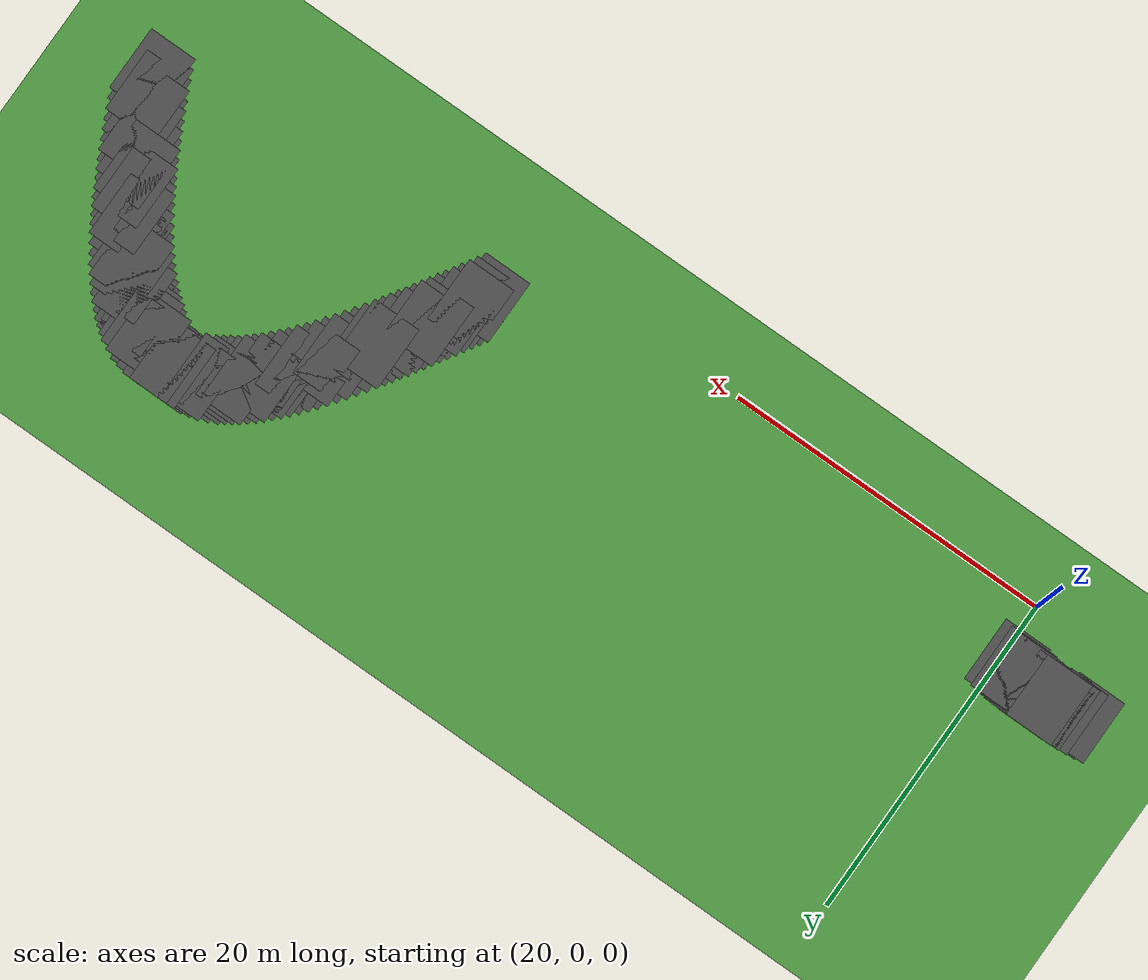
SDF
<sdf version="1.7">
 <world name="default">
  <model name="grass">
   <static>1</static>
   <link name="link">
    <collision name="collision">
     <geometry><plane><normal>0 0 1</normal><size>500 700</size></plane></geometry>
     <surface><friction><ode><mu>100</mu><mu2>50</mu2></ode></friction></surface>
    </collision>
    <visual name="visual">
     <cast_shadows>0</cast_shadows>
     <geometry><plane><normal>0 0 1</normal><size>500 700</size></plane></geometry>
     <material>
      <script><uri>file://media/materials/scripts/gazebo.material</uri><name>Gazebo/Grass</name></script>
     </material>
    </visual>
   </link>
   <pose>200 250 0 0 -0 0</pose>
  </model>
  <model name="roadSegment_14_1">
   <static>1</static>
   <link name="link">
    <collision name="collision"><geometry><box><size>3 4 0.01</size></box></geometry></collision>
    <visual name="visual">
     <cast_shadows>0</cast_shadows>
     <geometry><box><size>3 4 0.01</size></box></geometry>
     <material>
      <script>
       <uri>model://asphalt_plane/materials/scripts</uri>
       <uri>model://asphalt_plane/materials/textures</uri>
       <name>vrc/asphalt</name>
      </script>
     </material>
    </visual>
   </link>
   <pose>14.5 3.5651 0 0 -0 0</pose>
  </model>
  <model name="roadSegment_15_0">
   <static>1</static>
   <link name="link">
    <collision name="collision"><geometry><box><size>3 4 0.01</size></box></geometry></collision>
    <visual name="visual">
     <cast_shadows>0</cast_shadows>
     <geometry><box><size>3 4 0.01</size></box></geometry>
     <material>
      <script>
       <uri>model://asphalt_plane/materials/scripts</uri>
       <uri>model://asphalt_plane/materials/textures</uri>
       <name>vrc/asphalt</name>
      </script>
     </material>
    </visual>
   </link>
   <pose>15 3.65131 0 0 -0 0</pose>
  </model>
  <model name="roadSegment_15_1">
   <static>1</static>
   <link name="link">
    <collision name="collision"><geometry><box><size>3 4 0.01</size></box></geometry></collision>
    <visual name="visual">
     <cast_shadows>0</cast_shadows>
     <geometry><box><size>3 4 0.01</size></box></geometry>
     <material>
      <script>
       <uri>model://asphalt_plane/materials/scripts</uri>
       <uri>model://asphalt_plane/materials/textures</uri>
       <name>vrc/asphalt</name>
      </script>
     </material>
    </visual>
   </link>
   <pose>15.5 3.70442 0 0 -0 0</pose>
  </model>
  <model name="roadSegment_16_0">
   <static>1</static>
   <link name="link">
    <collision name="collision"><geometry><box><size>3 4 0.01</size></box></geometry></collision>
    <visual name="visual">
     <cast_shadows>0</cast_shadows>
     <geometry><box><size>3 4 0.01</size></box></geometry>
     <material>
      <script>
       <uri>model://asphalt_plane/materials/scripts</uri>
       <uri>model://asphalt_plane/materials/textures</uri>
       <name>vrc/asphalt</name>
      </script>
     </material>
    </visual>
   </link>
   <pose>16 3.75753 0 0 -0 0</pose>
  </model>
  <model name="roadSegment_16_1">
   <static>1</static>
   <link name="link">
    <collision name="collision"><geometry><box><size>3 4 0.01</size></box></geometry></collision>
    <visual name="visual">
     <cast_shadows>0</cast_shadows>
     <geometry><box><size>3 4 0.01</size></box></geometry>
     <material>
      <script>
       <uri>model://asphalt_plane/materials/scripts</uri>
       <uri>model://asphalt_plane/materials/textures</uri>
       <name>vrc/asphalt</name>
      </script>
     </material>
    </visual>
   </link>
   <pose>16.5 3.77333 0 0 -0 0</pose>
  </model>
  <model name="roadSegment_17_0">
   <static>1</static>
   <link name="link">
    <collision name="collision"><geometry><box><size>3 4 0.01</size></box></geometry></collision>
    <visual name="visual">
     <cast_shadows>0</cast_shadows>
     <geometry><box><size>3 4 0.01</size></box></geometry>
     <material>
      <script>
       <uri>model://asphalt_plane/materials/scripts</uri>
       <uri>model://asphalt_plane/materials/textures</uri>
       <name>vrc/asphalt</name>
      </script>
     </material>
    </visual>
   </link>
   <pose>17 3.78913 0 0 -0 0</pose>
  </model>
  <model name="roadSegment_17_1">
   <static>1</static>
   <link name="link">
    <collision name="collision"><geometry><box><size>3 4 0.01</size></box></geometry></collision>
    <visual name="visual">
     <cast_shadows>0</cast_shadows>
     <geometry><box><size>3 4 0.01</size></box></geometry>
     <material>
      <script>
       <uri>model://asphalt_plane/materials/scripts</uri>
       <uri>model://asphalt_plane/materials/textures</uri>
       <name>vrc/asphalt</name>
      </script>
     </material>
    </visual>
   </link>
   <pose>17.5 3.76409 0 0 -0 0</pose>
  </model>
  <model name="roadSegment_18_0">
   <static>1</static>
   <link name="link">
    <collision name="collision"><geometry><box><size>3 4 0.01</size></box></geometry></collision>
    <visual name="visual">
     <cast_shadows>0</cast_shadows>
     <geometry><box><size>3 4 0.01</size></box></geometry>
     <material>
      <script>
       <uri>model://asphalt_plane/materials/scripts</uri>
       <uri>model://asphalt_plane/materials/textures</uri>
       <name>vrc/asphalt</name>
      </script>
     </material>
    </visual>
   </link>
   <pose>18 3.73906 0 0 -0 0</pose>
  </model>
  <model name="roadSegment_18_1">
   <static>1</static>
   <link name="link">
    <collision name="collision"><geometry><box><size>3 4 0.01</size></box></geometry></collision>
    <visual name="visual">
     <cast_shadows>0</cast_shadows>
     <geometry><box><size>3 4 0.01</size></box></geometry>
     <material>
      <script>
       <uri>model://asphalt_plane/materials/scripts</uri>
       <uri>model://asphalt_plane/materials/textures</uri>
       <name>vrc/asphalt</name>
      </script>
     </material>
    </visual>
   </link>
   <pose>18.5 3.67046 0 0 -0 0</pose>
  </model>
  <model name="roadSegment_19_0">
   <static>1</static>
   <link name="link">
    <collision name="collision"><geometry><box><size>3 4 0.01</size></box></geometry></collision>
    <visual name="visual">
     <cast_shadows>0</cast_shadows>
     <geometry><box><size>3 4 0.01</size></box></geometry>
     <material>
      <script>
       <uri>model://asphalt_plane/materials/scripts</uri>
       <uri>model://asphalt_plane/materials/textures</uri>
       <name>vrc/asphalt</name>
      </script>
     </material>
    </visual>
   </link>
   <pose>19 3.60186 0 0 -0 0</pose>
  </model>
  <model name="roadSegment_19_1">
   <static>1</static>
   <link name="link">
    <collision name="collision"><geometry><box><size>3 4 0.01</size></box></geometry></collision>
    <visual name="visual">
     <cast_shadows>0</cast_shadows>
     <geometry><box><size>3 4 0.01</size></box></geometry>
     <material>
      <script>
       <uri>model://asphalt_plane/materials/scripts</uri>
       <uri>model://asphalt_plane/materials/textures</uri>
       <name>vrc/asphalt</name>
      </script>
     </material>
    </visual>
   </link>
   <pose>19.5 3.48782 0 0 -0 0</pose>
  </model>
  <model name="roadSegment_54_2">
   <static>1</static>
   <link name="link">
    <collision name="collision"><geometry><box><size>3 4 0.01</size></box></geometry></collision>
    <visual name="visual">
     <cast_shadows>0</cast_shadows>
     <geometry><box><size>3 4 0.01</size></box></geometry>
     <material>
      <script>
       <uri>model://asphalt_plane/materials/scripts</uri>
       <uri>model://asphalt_plane/materials/textures</uri>
       <name>vrc/asphalt</name>
      </script>
     </material>
    </visual>
   </link>
   <pose>54.5 3.49619 0 0 -0 0</pose>
  </model>
  <model name="roadSegment_54_3">
   <static>1</static>
   <link name="link">
    <collision name="collision"><geometry><box><size>3 4 0.01</size></box></geometry></collision>
    <visual name="visual">
     <cast_shadows>0</cast_shadows>
     <geometry><box><size>3 4 0.01</size></box></geometry>
     <material>
      <script>
       <uri>model://asphalt_plane/materials/scripts</uri>
       <uri>model://asphalt_plane/materials/textures</uri>
       <name>vrc/asphalt</name>
      </script>
     </material>
    </visual>
   </link>
   <pose>54.75 3.90719 0 0 -0 0</pose>
  </model>
  <model name="roadSegment_55_0">
   <static>1</static>
   <link name="link">
    <collision name="collision"><geometry><box><size>3 4 0.01</size></box></geometry></collision>
    <visual name="visual">
     <cast_shadows>0</cast_shadows>
     <geometry><box><size>3 4 0.01</size></box></geometry>
     <material>
      <script>
       <uri>model://asphalt_plane/materials/scripts</uri>
       <uri>model://asphalt_plane/materials/textures</uri>
       <name>vrc/asphalt</name>
      </script>
     </material>
    </visual>
   </link>
   <pose>55 4.31819 0 0 -0 0</pose>
  </model>
  <model name="roadSegment_55_1">
   <static>1</static>
   <link name="link">
    <collision name="collision"><geometry><box><size>3 4 0.01</size></box></geometry></collision>
    <visual name="visual">
     <cast_shadows>0</cast_shadows>
     <geometry><box><size>3 4 0.01</size></box></geometry>
     <material>
      <script>
       <uri>model://asphalt_plane/materials/scripts</uri>
       <uri>model://asphalt_plane/materials/textures</uri>
       <name>vrc/asphalt</name>
      </script>
     </material>
    </visual>
   </link>
   <pose>55.25 4.72786 0 0 -0 0</pose>
  </model>
  <model name="roadSegment_55_2">
   <static>1</static>
   <link name="link">
    <collision name="collision"><geometry><box><size>3 4 0.01</size></box></geometry></collision>
    <visual name="visual">
     <cast_shadows>0</cast_shadows>
     <geometry><box><size>3 4 0.01</size></box></geometry>
     <material>
      <script>
       <uri>model://asphalt_plane/materials/scripts</uri>
       <uri>model://asphalt_plane/materials/textures</uri>
       <name>vrc/asphalt</name>
      </script>
     </material>
    </visual>
   </link>
   <pose>55.5 5.13753 0 0 -0 0</pose>
  </model>
  <model name="roadSegment_55_3">
   <static>1</static>
   <link name="link">
    <collision name="collision"><geometry><box><size>3 4 0.01</size></box></geometry></collision>
    <visual name="visual">
     <cast_shadows>0</cast_shadows>
     <geometry><box><size>3 4 0.01</size></box></geometry>
     <material>
      <script>
       <uri>model://asphalt_plane/materials/scripts</uri>
       <uri>model://asphalt_plane/materials/textures</uri>
       <name>vrc/asphalt</name>
      </script>
     </material>
    </visual>
   </link>
   <pose>55.75 5.5472 0 0 -0 0</pose>
  </model>
  <model name="roadSegment_56_0">
   <static>1</static>
   <link name="link">
    <collision name="collision"><geometry><box><size>3 4 0.01</size></box></geometry></collision>
    <visual name="visual">
     <cast_shadows>0</cast_shadows>
     <geometry><box><size>3 4 0.01</size></box></geometry>
     <material>
      <script>
       <uri>model://asphalt_plane/materials/scripts</uri>
       <uri>model://asphalt_plane/materials/textures</uri>
       <name>vrc/asphalt</name>
      </script>
     </material>
    </visual>
   </link>
   <pose>56 5.95687 0 0 -0 0</pose>
  </model>
  <model name="roadSegment_56_1">
   <static>1</static>
   <link name="link">
    <collision name="collision"><geometry><box><size>3 4 0.01</size></box></geometry></collision>
    <visual name="visual">
     <cast_shadows>0</cast_shadows>
     <geometry><box><size>3 4 0.01</size></box></geometry>
     <material>
      <script>
       <uri>model://asphalt_plane/materials/scripts</uri>
       <uri>model://asphalt_plane/materials/textures</uri>
       <name>vrc/asphalt</name>
      </script>
     </material>
    </visual>
   </link>
   <pose>56.25 6.35865 0 0 -0 0</pose>
  </model>
  <model name="roadSegment_56_2">
   <static>1</static>
   <link name="link">
    <collision name="collision"><geometry><box><size>3 4 0.01</size></box></geometry></collision>
    <visual name="visual">
     <cast_shadows>0</cast_shadows>
     <geometry><box><size>3 4 0.01</size></box></geometry>
     <material>
      <script>
       <uri>model://asphalt_plane/materials/scripts</uri>
       <uri>model://asphalt_plane/materials/textures</uri>
       <name>vrc/asphalt</name>
      </script>
     </material>
    </visual>
   </link>
   <pose>56.5 6.76043 0 0 -0 0</pose>
  </model>
  <model name="roadSegment_56_3">
   <static>1</static>
   <link name="link">
    <collision name="collision"><geometry><box><size>3 4 0.01</size></box></geometry></collision>
    <visual name="visual">
     <cast_shadows>0</cast_shadows>
     <geometry><box><size>3 4 0.01</size></box></geometry>
     <material>
      <script>
       <uri>model://asphalt_plane/materials/scripts</uri>
       <uri>model://asphalt_plane/materials/textures</uri>
       <name>vrc/asphalt</name>
      </script>
     </material>
    </visual>
   </link>
   <pose>56.75 7.16221 0 0 -0 0</pose>
  </model>
  <model name="roadSegment_57_0">
   <static>1</static>
   <link name="link">
    <collision name="collision"><geometry><box><size>3 4 0.01</size></box></geometry></collision>
    <visual name="visual">
     <cast_shadows>0</cast_shadows>
     <geometry><box><size>3 4 0.01</size></box></geometry>
     <material>
      <script>
       <uri>model://asphalt_plane/materials/scripts</uri>
       <uri>model://asphalt_plane/materials/textures</uri>
       <name>vrc/asphalt</name>
      </script>
     </material>
    </visual>
   </link>
   <pose>57 7.56399 0 0 -0 0</pose>
  </model>
  <model name="roadSegment_57_1">
   <static>1</static>
   <link name="link">
    <collision name="collision"><geometry><box><size>3 4 0.01</size></box></geometry></collision>
    <visual name="visual">
     <cast_shadows>0</cast_shadows>
     <geometry><box><size>3 4 0.01</size></box></geometry>
     <material>
      <script>
       <uri>model://asphalt_plane/materials/scripts</uri>
       <uri>model://asphalt_plane/materials/textures</uri>
       <name>vrc/asphalt</name>
      </script>
     </material>
    </visual>
   </link>
   <pose>57.25 7.95124 0 0 -0 0</pose>
  </model>
  <model name="roadSegment_57_2">
   <static>1</static>
   <link name="link">
    <collision name="collision"><geometry><box><size>3 4 0.01</size></box></geometry></collision>
    <visual name="visual">
     <cast_shadows>0</cast_shadows>
     <geometry><box><size>3 4 0.01</size></box></geometry>
     <material>
      <script>
       <uri>model://asphalt_plane/materials/scripts</uri>
       <uri>model://asphalt_plane/materials/textures</uri>
       <name>vrc/asphalt</name>
      </script>
     </material>
    </visual>
   </link>
   <pose>57.5 8.33849 0 0 -0 0</pose>
  </model>
  <model name="roadSegment_57_3">
   <static>1</static>
   <link name="link">
    <collision name="collision"><geometry><box><size>3 4 0.01</size></box></geometry></collision>
    <visual name="visual">
     <cast_shadows>0</cast_shadows>
     <geometry><box><size>3 4 0.01</size></box></geometry>
     <material>
      <script>
       <uri>model://asphalt_plane/materials/scripts</uri>
       <uri>model://asphalt_plane/materials/textures</uri>
       <name>vrc/asphalt</name>
      </script>
     </material>
    </visual>
   </link>
   <pose>57.75 8.72574 0 0 -0 0</pose>
  </model>
  <model name="roadSegment_58_0">
   <static>1</static>
   <link name="link">
    <collision name="collision"><geometry><box><size>3 4 0.01</size></box></geometry></collision>
    <visual name="visual">
     <cast_shadows>0</cast_shadows>
     <geometry><box><size>3 4 0.01</size></box></geometry>
     <material>
      <script>
       <uri>model://asphalt_plane/materials/scripts</uri>
       <uri>model://asphalt_plane/materials/textures</uri>
       <name>vrc/asphalt</name>
      </script>
     </material>
    </visual>
   </link>
   <pose>58 9.11299 0 0 -0 0</pose>
  </model>
  <model name="roadSegment_58_1">
   <static>1</static>
   <link name="link">
    <collision name="collision"><geometry><box><size>3 4 0.01</size></box></geometry></collision>
    <visual name="visual">
     <cast_shadows>0</cast_shadows>
     <geometry><box><size>3 4 0.01</size></box></geometry>
     <material>
      <script>
       <uri>model://asphalt_plane/materials/scripts</uri>
       <uri>model://asphalt_plane/materials/textures</uri>
       <name>vrc/asphalt</name>
      </script>
     </material>
    </visual>
   </link>
   <pose>58.3333 9.60112 0 0 -0 0</pose>
  </model>
  <model name="roadSegment_58_2">
   <static>1</static>
   <link name="link">
    <collision name="collision"><geometry><box><size>3 4 0.01</size></box></geometry></collision>
    <visual name="visual">
     <cast_shadows>0</cast_shadows>
     <geometry><box><size>3 4 0.01</size></box></geometry>
     <material>
      <script>
       <uri>model://asphalt_plane/materials/scripts</uri>
       <uri>model://asphalt_plane/materials/textures</uri>
       <name>vrc/asphalt</name>
      </script>
     </material>
    </visual>
   </link>
   <pose>58.6667 10.0893 0 0 -0 0</pose>
  </model>
  <model name="roadSegment_59_0">
   <static>1</static>
   <link name="link">
    <collision name="collision"><geometry><box><size>3 4 0.01</size></box></geometry></collision>
    <visual name="visual">
     <cast_shadows>0</cast_shadows>
     <geometry><box><size>3 4 0.01</size></box></geometry>
     <material>
      <script>
       <uri>model://asphalt_plane/materials/scripts</uri>
       <uri>model://asphalt_plane/materials/textures</uri>
       <name>vrc/asphalt</name>
      </script>
     </material>
    </visual>
   </link>
   <pose>59 10.5774 0 0 -0 0</pose>
  </model>
  <model name="roadSegment_59_1">
   <static>1</static>
   <link name="link">
    <collision name="collision"><geometry><box><size>3 4 0.01</size></box></geometry></collision>
    <visual name="visual">
     <cast_shadows>0</cast_shadows>
     <geometry><box><size>3 4 0.01</size></box></geometry>
     <material>
      <script>
       <uri>model://asphalt_plane/materials/scripts</uri>
       <uri>model://asphalt_plane/materials/textures</uri>
       <name>vrc/asphalt</name>
      </script>
     </material>
    </visual>
   </link>
   <pose>59.3333 11.0287 0 0 -0 0</pose>
  </model>
  <model name="roadSegment_59_2">
   <static>1</static>
   <link name="link">
    <collision name="collision"><geometry><box><size>3 4 0.01</size></box></geometry></collision>
    <visual name="visual">
     <cast_shadows>0</cast_shadows>
     <geometry><box><size>3 4 0.01</size></box></geometry>
     <material>
      <script>
       <uri>model://asphalt_plane/materials/scripts</uri>
       <uri>model://asphalt_plane/materials/textures</uri>
       <name>vrc/asphalt</name>
      </script>
     </material>
    </visual>
   </link>
   <pose>59.6667 11.48 0 0 -0 0</pose>
  </model>
  <model name="roadSegment_60_0">
   <static>1</static>
   <link name="link">
    <collision name="collision"><geometry><box><size>3 4 0.01</size></box></geometry></collision>
    <visual name="visual">
     <cast_shadows>0</cast_shadows>
     <geometry><box><size>3 4 0.01</size></box></geometry>
     <material>
      <script>
       <uri>model://asphalt_plane/materials/scripts</uri>
       <uri>model://asphalt_plane/materials/textures</uri>
       <name>vrc/asphalt</name>
      </script>
     </material>
    </visual>
   </link>
   <pose>60 11.9313 0 0 -0 0</pose>
  </model>
  <model name="roadSegment_60_1">
   <static>1</static>
   <link name="link">
    <collision name="collision"><geometry><box><size>3 4 0.01</size></box></geometry></collision>
    <visual name="visual">
     <cast_shadows>0</cast_shadows>
     <geometry><box><size>3 4 0.01</size></box></geometry>
     <material>
      <script>
       <uri>model://asphalt_plane/materials/scripts</uri>
       <uri>model://asphalt_plane/materials/textures</uri>
       <name>vrc/asphalt</name>
      </script>
     </material>
    </visual>
   </link>
   <pose>60.3333 12.3374 0 0 -0 0</pose>
  </model>
  <model name="roadSegment_60_2">
   <static>1</static>
   <link name="link">
    <collision name="collision"><geometry><box><size>3 4 0.01</size></box></geometry></collision>
    <visual name="visual">
     <cast_shadows>0</cast_shadows>
     <geometry><box><size>3 4 0.01</size></box></geometry>
     <material>
      <script>
       <uri>model://asphalt_plane/materials/scripts</uri>
       <uri>model://asphalt_plane/materials/textures</uri>
       <name>vrc/asphalt</name>
      </script>
     </material>
    </visual>
   </link>
   <pose>60.6667 12.7435 0 0 -0 0</pose>
  </model>
  <model name="roadSegment_61_0">
   <static>1</static>
   <link name="link">
    <collision name="collision"><geometry><box><size>3 4 0.01</size></box></geometry></collision>
    <visual name="visual">
     <cast_shadows>0</cast_shadows>
     <geometry><box><size>3 4 0.01</size></box></geometry>
     <material>
      <script>
       <uri>model://asphalt_plane/materials/scripts</uri>
       <uri>model://asphalt_plane/materials/textures</uri>
       <name>vrc/asphalt</name>
      </script>
     </material>
    </visual>
   </link>
   <pose>61 13.1497 0 0 -0 0</pose>
  </model>
  <model name="roadSegment_61_1">
   <static>1</static>
   <link name="link">
    <collision name="collision"><geometry><box><size>3 4 0.01</size></box></geometry></collision>
    <visual name="visual">
     <cast_shadows>0</cast_shadows>
     <geometry><box><size>3 4 0.01</size></box></geometry>
     <material>
      <script>
       <uri>model://asphalt_plane/materials/scripts</uri>
       <uri>model://asphalt_plane/materials/textures</uri>
       <name>vrc/asphalt</name>
      </script>
     </material>
    </visual>
   </link>
   <pose>61.3333 13.5028 0 0 -0 0</pose>
  </model>
  <model name="roadSegment_61_2">
   <static>1</static>
   <link name="link">
    <collision name="collision"><geometry><box><size>3 4 0.01</size></box></geometry></collision>
    <visual name="visual">
     <cast_shadows>0</cast_shadows>
     <geometry><box><size>3 4 0.01</size></box></geometry>
     <material>
      <script>
       <uri>model://asphalt_plane/materials/scripts</uri>
       <uri>model://asphalt_plane/materials/textures</uri>
       <name>vrc/asphalt</name>
      </script>
     </material>
    </visual>
   </link>
   <pose>61.6667 13.856 0 0 -0 0</pose>
  </model>
  <model name="roadSegment_62_0">
   <static>1</static>
   <link name="link">
    <collision name="collision"><geometry><box><size>3 4 0.01</size></box></geometry></collision>
    <visual name="visual">
     <cast_shadows>0</cast_shadows>
     <geometry><box><size>3 4 0.01</size></box></geometry>
     <material>
      <script>
       <uri>model://asphalt_plane/materials/scripts</uri>
       <uri>model://asphalt_plane/materials/textures</uri>
       <name>vrc/asphalt</name>
      </script>
     </material>
    </visual>
   </link>
   <pose>62 14.2092 0 0 -0 0</pose>
  </model>
  <model name="roadSegment_62_1">
   <static>1</static>
   <link name="link">
    <collision name="collision"><geometry><box><size>3 4 0.01</size></box></geometry></collision>
    <visual name="visual">
     <cast_shadows>0</cast_shadows>
     <geometry><box><size>3 4 0.01</size></box></geometry>
     <material>
      <script>
       <uri>model://asphalt_plane/materials/scripts</uri>
       <uri>model://asphalt_plane/materials/textures</uri>
       <name>vrc/asphalt</name>
      </script>
     </material>
    </visual>
   </link>
   <pose>62.3333 14.5021 0 0 -0 0</pose>
  </model>
  <model name="roadSegment_62_2">
   <static>1</static>
   <link name="link">
    <collision name="collision"><geometry><box><size>3 4 0.01</size></box></geometry></collision>
    <visual name="visual">
     <cast_shadows>0</cast_shadows>
     <geometry><box><size>3 4 0.01</size></box></geometry>
     <material>
      <script>
       <uri>model://asphalt_plane/materials/scripts</uri>
       <uri>model://asphalt_plane/materials/textures</uri>
       <name>vrc/asphalt</name>
      </script>
     </material>
    </visual>
   </link>
   <pose>62.6667 14.7951 0 0 -0 0</pose>
  </model>
  <model name="roadSegment_63_0">
   <static>1</static>
   <link name="link">
    <collision name="collision"><geometry><box><size>3 4 0.01</size></box></geometry></collision>
    <visual name="visual">
     <cast_shadows>0</cast_shadows>
     <geometry><box><size>3 4 0.01</size></box></geometry>
     <material>
      <script>
       <uri>model://asphalt_plane/materials/scripts</uri>
       <uri>model://asphalt_plane/materials/textures</uri>
       <name>vrc/asphalt</name>
      </script>
     </material>
    </visual>
   </link>
   <pose>63 15.088 0 0 -0 0</pose>
  </model>
  <model name="roadSegment_63_1">
   <static>1</static>
   <link name="link">
    <collision name="collision"><geometry><box><size>3 4 0.01</size></box></geometry></collision>
    <visual name="visual">
     <cast_shadows>0</cast_shadows>
     <geometry><box><size>3 4 0.01</size></box></geometry>
     <material>
      <script>
       <uri>model://asphalt_plane/materials/scripts</uri>
       <uri>model://asphalt_plane/materials/textures</uri>
       <name>vrc/asphalt</name>
      </script>
     </material>
    </visual>
   </link>
   <pose>63.3333 15.3143 0 0 -0 0</pose>
  </model>
  <model name="roadSegment_63_2">
   <static>1</static>
   <link name="link">
    <collision name="collision"><geometry><box><size>3 4 0.01</size></box></geometry></collision>
    <visual name="visual">
     <cast_shadows>0</cast_shadows>
     <geometry><box><size>3 4 0.01</size></box></geometry>
     <material>
      <script>
       <uri>model://asphalt_plane/materials/scripts</uri>
       <uri>model://asphalt_plane/materials/textures</uri>
       <name>vrc/asphalt</name>
      </script>
     </material>
    </visual>
   </link>
   <pose>63.6667 15.5406 0 0 -0 0</pose>
  </model>
  <model name="roadSegment_64_0">
   <static>1</static>
   <link name="link">
    <collision name="collision"><geometry><box><size>3 4 0.01</size></box></geometry></collision>
    <visual name="visual">
     <cast_shadows>0</cast_shadows>
     <geometry><box><size>3 4 0.01</size></box></geometry>
     <material>
      <script>
       <uri>model://asphalt_plane/materials/scripts</uri>
       <uri>model://asphalt_plane/materials/textures</uri>
       <name>vrc/asphalt</name>
      </script>
     </material>
    </visual>
   </link>
   <pose>64 15.7669 0 0 -0 0</pose>
  </model>
  <model name="roadSegment_64_1">
   <static>1</static>
   <link name="link">
    <collision name="collision"><geometry><box><size>3 4 0.01</size></box></geometry></collision>
    <visual name="visual">
     <cast_shadows>0</cast_shadows>
     <geometry><box><size>3 4 0.01</size></box></geometry>
     <material>
      <script>
       <uri>model://asphalt_plane/materials/scripts</uri>
       <uri>model://asphalt_plane/materials/textures</uri>
       <name>vrc/asphalt</name>
      </script>
     </material>
    </visual>
   </link>
   <pose>64.5 15.9979 0 0 -0 0</pose>
  </model>
  <model name="roadSegment_65_0">
   <static>1</static>
   <link name="link">
    <collision name="collision"><geometry><box><size>3 4 0.01</size></box></geometry></collision>
    <visual name="visual">
     <cast_shadows>0</cast_shadows>
     <geometry><box><size>3 4 0.01</size></box></geometry>
     <material>
      <script>
       <uri>model://asphalt_plane/materials/scripts</uri>
       <uri>model://asphalt_plane/materials/textures</uri>
       <name>vrc/asphalt</name>
      </script>
     </material>
    </visual>
   </link>
   <pose>65 16.229 0 0 -0 0</pose>
  </model>
  <model name="roadSegment_65_1">
   <static>1</static>
   <link name="link">
    <collision name="collision"><geometry><box><size>3 4 0.01</size></box></geometry></collision>
    <visual name="visual">
     <cast_shadows>0</cast_shadows>
     <geometry><box><size>3 4 0.01</size></box></geometry>
     <material>
      <script>
       <uri>model://asphalt_plane/materials/scripts</uri>
       <uri>model://asphalt_plane/materials/textures</uri>
       <name>vrc/asphalt</name>
      </script>
     </material>
    </visual>
   </link>
   <pose>65.5 16.3448 0 0 -0 0</pose>
  </model>
  <model name="roadSegment_66_0">
   <static>1</static>
   <link name="link">
    <collision name="collision"><geometry><box><size>3 4 0.01</size></box></geometry></collision>
    <visual name="visual">
     <cast_shadows>0</cast_shadows>
     <geometry><box><size>3 4 0.01</size></box></geometry>
     <material>
      <script>
       <uri>model://asphalt_plane/materials/scripts</uri>
       <uri>model://asphalt_plane/materials/textures</uri>
       <name>vrc/asphalt</name>
      </script>
     </material>
    </visual>
   </link>
   <pose>66 16.4605 0 0 -0 0</pose>
  </model>
  <model name="roadSegment_66_1">
   <static>1</static>
   <link name="link">
    <collision name="collision"><geometry><box><size>3 4 0.01</size></box></geometry></collision>
    <visual name="visual">
     <cast_shadows>0</cast_shadows>
     <geometry><box><size>3 4 0.01</size></box></geometry>
     <material>
      <script>
       <uri>model://asphalt_plane/materials/scripts</uri>
       <uri>model://asphalt_plane/materials/textures</uri>
       <name>vrc/asphalt</name>
      </script>
     </material>
    </visual>
   </link>
   <pose>66.5 16.4558 0 0 -0 0</pose>
  </model>
  <model name="roadSegment_67_0">
   <static>1</static>
   <link name="link">
    <collision name="collision"><geometry><box><size>3 4 0.01</size></box></geometry></collision>
    <visual name="visual">
     <cast_shadows>0</cast_shadows>
     <geometry><box><size>3 4 0.01</size></box></geometry>
     <material>
      <script>
       <uri>model://asphalt_plane/materials/scripts</uri>
       <uri>model://asphalt_plane/materials/textures</uri>
       <name>vrc/asphalt</name>
      </script>
     </material>
    </visual>
   </link>
   <pose>67 16.451 0 0 -0 0</pose>
  </model>
  <model name="roadSegment_67_1">
   <static>1</static>
   <link name="link">
    <collision name="collision"><geometry><box><size>3 4 0.01</size></box></geometry></collision>
    <visual name="visual">
     <cast_shadows>0</cast_shadows>
     <geometry><box><size>3 4 0.01</size></box></geometry>
     <material>
      <script>
       <uri>model://asphalt_plane/materials/scripts</uri>
       <uri>model://asphalt_plane/materials/textures</uri>
       <name>vrc/asphalt</name>
      </script>
     </material>
    </visual>
   </link>
   <pose>67.5 16.3222 0 0 -0 0</pose>
  </model>
  <model name="roadSegment_68_0">
   <static>1</static>
   <link name="link">
    <collision name="collision"><geometry><box><size>3 4 0.01</size></box></geometry></collision>
    <visual name="visual">
     <cast_shadows>0</cast_shadows>
     <geometry><box><size>3 4 0.01</size></box></geometry>
     <material>
      <script>
       <uri>model://asphalt_plane/materials/scripts</uri>
       <uri>model://asphalt_plane/materials/textures</uri>
       <name>vrc/asphalt</name>
      </script>
     </material>
    </visual>
   </link>
   <pose>68 16.1934 0 0 -0 0</pose>
  </model>
  <model name="roadSegment_68_1">
   <static>1</static>
   <link name="link">
    <collision name="collision"><geometry><box><size>3 4 0.01</size></box></geometry></collision>
    <visual name="visual">
     <cast_shadows>0</cast_shadows>
     <geometry><box><size>3 4 0.01</size></box></geometry>
     <material>
      <script>
       <uri>model://asphalt_plane/materials/scripts</uri>
       <uri>model://asphalt_plane/materials/textures</uri>
       <name>vrc/asphalt</name>
      </script>
     </material>
    </visual>
   </link>
   <pose>68.5 15.9389 0 0 -0 0</pose>
  </model>
  <model name="roadSegment_69_0">
   <static>1</static>
   <link name="link">
    <collision name="collision"><geometry><box><size>3 4 0.01</size></box></geometry></collision>
    <visual name="visual">
     <cast_shadows>0</cast_shadows>
     <geometry><box><size>3 4 0.01</size></box></geometry>
     <material>
      <script>
       <uri>model://asphalt_plane/materials/scripts</uri>
       <uri>model://asphalt_plane/materials/textures</uri>
       <name>vrc/asphalt</name>
      </script>
     </material>
    </visual>
   </link>
   <pose>69 15.6845 0 0 -0 0</pose>
  </model>
  <model name="roadSegment_69_1">
   <static>1</static>
   <link name="link">
    <collision name="collision"><geometry><box><size>3 4 0.01</size></box></geometry></collision>
    <visual name="visual">
     <cast_shadows>0</cast_shadows>
     <geometry><box><size>3 4 0.01</size></box></geometry>
     <material>
      <script>
       <uri>model://asphalt_plane/materials/scripts</uri>
       <uri>model://asphalt_plane/materials/textures</uri>
       <name>vrc/asphalt</name>
      </script>
     </material>
    </visual>
   </link>
   <pose>69.3333 15.4313 0 0 -0 0</pose>
  </model>
  <model name="roadSegment_69_2">
   <static>1</static>
   <link name="link">
    <collision name="collision"><geometry><box><size>3 4 0.01</size></box></geometry></collision>
    <visual name="visual">
     <cast_shadows>0</cast_shadows>
     <geometry><box><size>3 4 0.01</size></box></geometry>
     <material>
      <script>
       <uri>model://asphalt_plane/materials/scripts</uri>
       <uri>model://asphalt_plane/materials/textures</uri>
       <name>vrc/asphalt</name>
      </script>
     </material>
    </visual>
   </link>
   <pose>69.6667 15.1781 0 0 -0 0</pose>
  </model>
  <model name="roadSegment_70_0">
   <static>1</static>
   <link name="link">
    <collision name="collision"><geometry><box><size>3 4 0.01</size></box></geometry></collision>
    <visual name="visual">
     <cast_shadows>0</cast_shadows>
     <geometry><box><size>3 4 0.01</size></box></geometry>
     <material>
      <script>
       <uri>model://asphalt_plane/materials/scripts</uri>
       <uri>model://asphalt_plane/materials/textures</uri>
       <name>vrc/asphalt</name>
      </script>
     </material>
    </visual>
   </link>
   <pose>70 14.9249 0 0 -0 0</pose>
  </model>
  <model name="roadSegment_70_1">
   <static>1</static>
   <link name="link">
    <collision name="collision"><geometry><box><size>3 4 0.01</size></box></geometry></collision>
    <visual name="visual">
     <cast_shadows>0</cast_shadows>
     <geometry><box><size>3 4 0.01</size></box></geometry>
     <material>
      <script>
       <uri>model://asphalt_plane/materials/scripts</uri>
       <uri>model://asphalt_plane/materials/textures</uri>
       <name>vrc/asphalt</name>
      </script>
     </material>
    </visual>
   </link>
   <pose>70.3333 14.5896 0 0 -0 0</pose>
  </model>
  <model name="roadSegment_70_2">
   <static>1</static>
   <link name="link">
    <collision name="collision"><geometry><box><size>3 4 0.01</size></box></geometry></collision>
    <visual name="visual">
     <cast_shadows>0</cast_shadows>
     <geometry><box><size>3 4 0.01</size></box></geometry>
     <material>
      <script>
       <uri>model://asphalt_plane/materials/scripts</uri>
       <uri>model://asphalt_plane/materials/textures</uri>
       <name>vrc/asphalt</name>
      </script>
     </material>
    </visual>
   </link>
   <pose>70.6667 14.2544 0 0 -0 0</pose>
  </model>
  <model name="roadSegment_71_0">
   <static>1</static>
   <link name="link">
    <collision name="collision"><geometry><box><size>3 4 0.01</size></box></geometry></collision>
    <visual name="visual">
     <cast_shadows>0</cast_shadows>
     <geometry><box><size>3 4 0.01</size></box></geometry>
     <material>
      <script>
       <uri>model://asphalt_plane/materials/scripts</uri>
       <uri>model://asphalt_plane/materials/textures</uri>
       <name>vrc/asphalt</name>
      </script>
     </material>
    </visual>
   </link>
   <pose>71 13.9191 0 0 -0 0</pose>
  </model>
  <model name="roadSegment_71_1">
   <static>1</static>
   <link name="link">
    <collision name="collision"><geometry><box><size>3 4 0.01</size></box></geometry></collision>
    <visual name="visual">
     <cast_shadows>0</cast_shadows>
     <geometry><box><size>3 4 0.01</size></box></geometry>
     <material>
      <script>
       <uri>model://asphalt_plane/materials/scripts</uri>
       <uri>model://asphalt_plane/materials/textures</uri>
       <name>vrc/asphalt</name>
      </script>
     </material>
    </visual>
   </link>
   <pose>71.3333 13.5047 0 0 -0 0</pose>
  </model>
  <model name="roadSegment_71_2">
   <static>1</static>
   <link name="link">
    <collision name="collision"><geometry><box><size>3 4 0.01</size></box></geometry></collision>
    <visual name="visual">
     <cast_shadows>0</cast_shadows>
     <geometry><box><size>3 4 0.01</size></box></geometry>
     <material>
      <script>
       <uri>model://asphalt_plane/materials/scripts</uri>
       <uri>model://asphalt_plane/materials/textures</uri>
       <name>vrc/asphalt</name>
      </script>
     </material>
    </visual>
   </link>
   <pose>71.6667 13.0903 0 0 -0 0</pose>
  </model>
  <model name="roadSegment_72_0">
   <static>1</static>
   <link name="link">
    <collision name="collision"><geometry><box><size>3 4 0.01</size></box></geometry></collision>
    <visual name="visual">
     <cast_shadows>0</cast_shadows>
     <geometry><box><size>3 4 0.01</size></box></geometry>
     <material>
      <script>
       <uri>model://asphalt_plane/materials/scripts</uri>
       <uri>model://asphalt_plane/materials/textures</uri>
       <name>vrc/asphalt</name>
      </script>
     </material>
    </visual>
   </link>
   <pose>72 12.6759 0 0 -0 0</pose>
  </model>
  <model name="roadSegment_72_1">
   <static>1</static>
   <link name="link">
    <collision name="collision"><geometry><box><size>3 4 0.01</size></box></geometry></collision>
    <visual name="visual">
     <cast_shadows>0</cast_shadows>
     <geometry><box><size>3 4 0.01</size></box></geometry>
     <material>
      <script>
       <uri>model://asphalt_plane/materials/scripts</uri>
       <uri>model://asphalt_plane/materials/textures</uri>
       <name>vrc/asphalt</name>
      </script>
     </material>
    </visual>
   </link>
   <pose>72.3333 12.1865 0 0 -0 0</pose>
  </model>
  <model name="roadSegment_72_2">
   <static>1</static>
   <link name="link">
    <collision name="collision"><geometry><box><size>3 4 0.01</size></box></geometry></collision>
    <visual name="visual">
     <cast_shadows>0</cast_shadows>
     <geometry><box><size>3 4 0.01</size></box></geometry>
     <material>
      <script>
       <uri>model://asphalt_plane/materials/scripts</uri>
       <uri>model://asphalt_plane/materials/textures</uri>
       <name>vrc/asphalt</name>
      </script>
     </material>
    </visual>
   </link>
   <pose>72.6667 11.6971 0 0 -0 0</pose>
  </model>
  <model name="roadSegment_73_0">
   <static>1</static>
   <link name="link">
    <collision name="collision"><geometry><box><size>3 4 0.01</size></box></geometry></collision>
    <visual name="visual">
     <cast_shadows>0</cast_shadows>
     <geometry><box><size>3 4 0.01</size></box></geometry>
     <material>
      <script>
       <uri>model://asphalt_plane/materials/scripts</uri>
       <uri>model://asphalt_plane/materials/textures</uri>
       <name>vrc/asphalt</name>
      </script>
     </material>
    </visual>
   </link>
   <pose>73 11.2077 0 0 -0 0</pose>
  </model>
  <model name="roadSegment_73_1">
   <static>1</static>
   <link name="link">
    <collision name="collision"><geometry><box><size>3 4 0.01</size></box></geometry></collision>
    <visual name="visual">
     <cast_shadows>0</cast_shadows>
     <geometry><box><size>3 4 0.01</size></box></geometry>
     <material>
      <script>
       <uri>model://asphalt_plane/materials/scripts</uri>
       <uri>model://asphalt_plane/materials/textures</uri>
       <name>vrc/asphalt</name>
      </script>
     </material>
    </visual>
   </link>
   <pose>73.25 10.7885 0 0 -0 0</pose>
  </model>
  <model name="roadSegment_73_2">
   <static>1</static>
   <link name="link">
    <collision name="collision"><geometry><box><size>3 4 0.01</size></box></geometry></collision>
    <visual name="visual">
     <cast_shadows>0</cast_shadows>
     <geometry><box><size>3 4 0.01</size></box></geometry>
     <material>
      <script>
       <uri>model://asphalt_plane/materials/scripts</uri>
       <uri>model://asphalt_plane/materials/textures</uri>
       <name>vrc/asphalt</name>
      </script>
     </material>
    </visual>
   </link>
   <pose>73.5 10.3693 0 0 -0 0</pose>
  </model>
  <model name="roadSegment_73_3">
   <static>1</static>
   <link name="link">
    <collision name="collision"><geometry><box><size>3 4 0.01</size></box></geometry></collision>
    <visual name="visual">
     <cast_shadows>0</cast_shadows>
     <geometry><box><size>3 4 0.01</size></box></geometry>
     <material>
      <script>
       <uri>model://asphalt_plane/materials/scripts</uri>
       <uri>model://asphalt_plane/materials/textures</uri>
       <name>vrc/asphalt</name>
      </script>
     </material>
    </visual>
   </link>
   <pose>73.75 9.95013 0 0 -0 0</pose>
  </model>
  <model name="roadSegment_74_0">
   <static>1</static>
   <link name="link">
    <collision name="collision"><geometry><box><size>3 4 0.01</size></box></geometry></collision>
    <visual name="visual">
     <cast_shadows>0</cast_shadows>
     <geometry><box><size>3 4 0.01</size></box></geometry>
     <material>
      <script>
       <uri>model://asphalt_plane/materials/scripts</uri>
       <uri>model://asphalt_plane/materials/textures</uri>
       <name>vrc/asphalt</name>
      </script>
     </material>
    </visual>
   </link>
   <pose>74 9.53094 0 0 -0 0</pose>
  </model>
  <model name="roadSegment_74_1">
   <static>1</static>
   <link name="link">
    <collision name="collision"><geometry><box><size>3 4 0.01</size></box></geometry></collision>
    <visual name="visual">
     <cast_shadows>0</cast_shadows>
     <geometry><box><size>3 4 0.01</size></box></geometry>
     <material>
      <script>
       <uri>model://asphalt_plane/materials/scripts</uri>
       <uri>model://asphalt_plane/materials/textures</uri>
       <name>vrc/asphalt</name>
      </script>
     </material>
    </visual>
   </link>
   <pose>74.25 9.06462 0 0 -0 0</pose>
  </model>
  <model name="roadSegment_74_2">
   <static>1</static>
   <link name="link">
    <collision name="collision"><geometry><box><size>3 4 0.01</size></box></geometry></collision>
    <visual name="visual">
     <cast_shadows>0</cast_shadows>
     <geometry><box><size>3 4 0.01</size></box></geometry>
     <material>
      <script>
       <uri>model://asphalt_plane/materials/scripts</uri>
       <uri>model://asphalt_plane/materials/textures</uri>
       <name>vrc/asphalt</name>
      </script>
     </material>
    </visual>
   </link>
   <pose>74.5 8.59829 0 0 -0 0</pose>
  </model>
  <model name="roadSegment_74_3">
   <static>1</static>
   <link name="link">
    <collision name="collision"><geometry><box><size>3 4 0.01</size></box></geometry></collision>
    <visual name="visual">
     <cast_shadows>0</cast_shadows>
     <geometry><box><size>3 4 0.01</size></box></geometry>
     <material>
      <script>
       <uri>model://asphalt_plane/materials/scripts</uri>
       <uri>model://asphalt_plane/materials/textures</uri>
       <name>vrc/asphalt</name>
      </script>
     </material>
    </visual>
   </link>
   <pose>74.75 8.13197 0 0 -0 0</pose>
  </model>
  <model name="roadSegment_75_0">
   <static>1</static>
   <link name="link">
    <collision name="collision"><geometry><box><size>3 4 0.01</size></box></geometry></collision>
    <visual name="visual">
     <cast_shadows>0</cast_shadows>
     <geometry><box><size>3 4 0.01</size></box></geometry>
     <material>
      <script>
       <uri>model://asphalt_plane/materials/scripts</uri>
       <uri>model://asphalt_plane/materials/textures</uri>
       <name>vrc/asphalt</name>
      </script>
     </material>
    </visual>
   </link>
   <pose>75 7.66565 0 0 -0 0</pose>
  </model>
  <model name="roadSegment_75_1">
   <static>1</static>
   <link name="link">
    <collision name="collision"><geometry><box><size>3 4 0.01</size></box></geometry></collision>
    <visual name="visual">
     <cast_shadows>0</cast_shadows>
     <geometry><box><size>3 4 0.01</size></box></geometry>
     <material>
      <script>
       <uri>model://asphalt_plane/materials/scripts</uri>
       <uri>model://asphalt_plane/materials/textures</uri>
       <name>vrc/asphalt</name>
      </script>
     </material>
    </visual>
   </link>
   <pose>75.25 7.15808 0 0 -0 0</pose>
  </model>
  <model name="roadSegment_75_2">
   <static>1</static>
   <link name="link">
    <collision name="collision"><geometry><box><size>3 4 0.01</size></box></geometry></collision>
    <visual name="visual">
     <cast_shadows>0</cast_shadows>
     <geometry><box><size>3 4 0.01</size></box></geometry>
     <material>
      <script>
       <uri>model://asphalt_plane/materials/scripts</uri>
       <uri>model://asphalt_plane/materials/textures</uri>
       <name>vrc/asphalt</name>
      </script>
     </material>
    </visual>
   </link>
   <pose>75.5 6.6505 0 0 -0 0</pose>
  </model>
  <model name="roadSegment_75_3">
   <static>1</static>
   <link name="link">
    <collision name="collision"><geometry><box><size>3 4 0.01</size></box></geometry></collision>
    <visual name="visual">
     <cast_shadows>0</cast_shadows>
     <geometry><box><size>3 4 0.01</size></box></geometry>
     <material>
      <script>
       <uri>model://asphalt_plane/materials/scripts</uri>
       <uri>model://asphalt_plane/materials/textures</uri>
       <name>vrc/asphalt</name>
      </script>
     </material>
    </visual>
   </link>
   <pose>75.75 6.14293 0 0 -0 0</pose>
  </model>
  <model name="roadSegment_76_0">
   <static>1</static>
   <link name="link">
    <collision name="collision"><geometry><box><size>3 4 0.01</size></box></geometry></collision>
    <visual name="visual">
     <cast_shadows>0</cast_shadows>
     <geometry><box><size>3 4 0.01</size></box></geometry>
     <material>
      <script>
       <uri>model://asphalt_plane/materials/scripts</uri>
       <uri>model://asphalt_plane/materials/textures</uri>
       <name>vrc/asphalt</name>
      </script>
     </material>
    </visual>
   </link>
   <pose>76 5.63536 0 0 -0 0</pose>
  </model>
  <model name="roadSegment_76_1">
   <static>1</static>
   <link name="link">
    <collision name="collision"><geometry><box><size>3 4 0.01</size></box></geometry></collision>
    <visual name="visual">
     <cast_shadows>0</cast_shadows>
     <geometry><box><size>3 4 0.01</size></box></geometry>
     <material>
      <script>
       <uri>model://asphalt_plane/materials/scripts</uri>
       <uri>model://asphalt_plane/materials/textures</uri>
       <name>vrc/asphalt</name>
      </script>
     </material>
    </visual>
   </link>
   <pose>76.25 5.09322 0 0 -0 0</pose>
  </model>
  <model name="roadSegment_76_2">
   <static>1</static>
   <link name="link">
    <collision name="collision"><geometry><box><size>3 4 0.01</size></box></geometry></collision>
    <visual name="visual">
     <cast_shadows>0</cast_shadows>
     <geometry><box><size>3 4 0.01</size></box></geometry>
     <material>
      <script>
       <uri>model://asphalt_plane/materials/scripts</uri>
       <uri>model://asphalt_plane/materials/textures</uri>
       <name>vrc/asphalt</name>
      </script>
     </material>
    </visual>
   </link>
   <pose>76.5 4.55107 0 0 -0 0</pose>
  </model>
  <model name="roadSegment_76_3">
   <static>1</static>
   <link name="link">
    <collision name="collision"><geometry><box><size>3 4 0.01</size></box></geometry></collision>
    <visual name="visual">
     <cast_shadows>0</cast_shadows>
     <geometry><box><size>3 4 0.01</size></box></geometry>
     <material>
      <script>
       <uri>model://asphalt_plane/materials/scripts</uri>
       <uri>model://asphalt_plane/materials/textures</uri>
       <name>vrc/asphalt</name>
      </script>
     </material>
    </visual>
   </link>
   <pose>76.75 4.00893 0 0 -0 0</pose>
  </model>
 </world>
</sdf>
